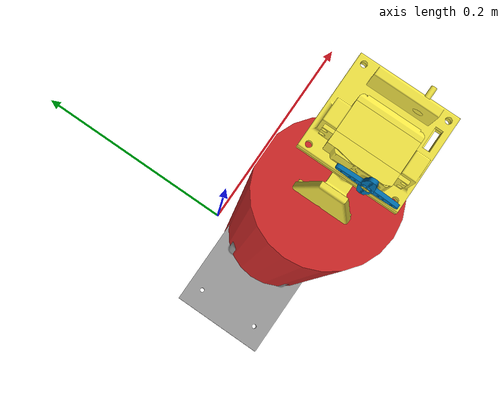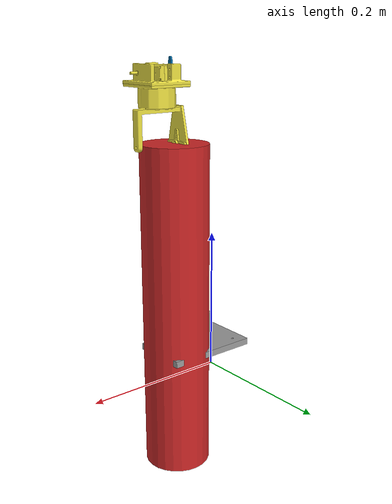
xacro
<?xml version="1.0"?>
<robot xmlns:xacro="http://ros.org/wiki/xacro" name="fredo1">

  <!-- Load materials -->
  <xacro:include filename="$(find fredo1_robot)/urdf/materials.xacro"/>

  <!-- Load links -->
  <xacro:include filename="$(find fredo1_robot)/urdf/links/base_link.xacro"/>
  <xacro:include filename="$(find fredo1_robot)/urdf/links/link1.xacro"/>
  <xacro:include filename="$(find fredo1_robot)/urdf/links/link2.xacro"/>
  <xacro:include filename="$(find fredo1_robot)/urdf/links/link3.xacro"/>

  <!-- Load joints -->
  <xacro:include filename="$(find fredo1_robot)/urdf/joints/joint0.xacro"/>
  <xacro:include filename="$(find fredo1_robot)/urdf/joints/joint1.xacro"/>
  <xacro:include filename="$(find fredo1_robot)/urdf/joints/joint2.xacro"/>
  <xacro:include filename="$(find fredo1_robot)/urdf/joints/joint3.xacro"/>

  <gazebo>
    <plugin name="gazebo_ros_control" filename="libgazebo_ros_control.so">
    </plugin>
  </gazebo>

</robot>

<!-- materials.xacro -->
<robot xmlns:xacro="http://ros.org/wiki/xacro">
  <material name="Blue">
    <color rgba="0 0 1 1"/>
  </material>
  <material name="Red">
    <color rgba="1 0 0 1"/>
  </material>
  <material name="Green">
    <color rgba="0 1 0 1"/>
  </material>
</robot>

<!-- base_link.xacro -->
<robot xmlns:xacro="http://ros.org/wiki/xacro">

  <!-- Define the fredo1 World Link -->
  <link name="world"/>

  <!-- Base Link -->
  <link name="base_link">
    <!-- Visual -->
    <visual>
      <origin xyz="0 0 0" rpy="1.5708 0 0"/>
      <geometry>
        <mesh filename="package://fredo1_robot/../cad/all_files/a_base.STL" scale="0.001 0.001 0.001"/>
      </geometry>
    </visual>

    <!-- Collision -->
    <collision>
      <origin xyz="0 0 0" rpy="1.5708 0 0"/>
      <geometry>
        <mesh filename="package://fredo1_robot/../cad/all_files/a_base.STL" scale="0.001 0.001 0.001"/>
      </geometry>
    </collision>

    <visual>
      <origin xyz="0 0 0" rpy="1.5708 0 0"/>
      <geometry>
        <mesh filename="package://fredo1_robot/../cad/all_files/a_servo_1.STL" scale="0.001 0.001 0.001"/>
      </geometry>
    </visual>

    <!-- Collision -->
    <collision>
      <origin xyz="0 0 0" rpy="1.5708 0 0"/>
      <geometry>
        <mesh filename="package://fredo1_robot/../cad/all_files/a_servo_1.STL" scale="0.001 0.001 0.001"/>
      </geometry>
    </collision>

    <visual>
      <origin xyz="0 0 0" rpy="1.5708 0 0"/>
      <geometry>
        <mesh filename="package://fredo1_robot/../cad/all_files/a_servo_2.STL" scale="0.001 0.001 0.001"/>
      </geometry>
    </visual>

    <!-- Collision -->
    <collision>
      <origin xyz="0 0 0" rpy="1.5708 0 0"/>
      <geometry>
        <mesh filename="package://fredo1_robot/../cad/all_files/a_servo_2.STL" scale="0.001 0.001 0.001"/>
      </geometry>
    </collision>

    <visual>
      <origin xyz="0 0 0" rpy="1.5708 0 0"/>
      <geometry>
        <mesh filename="package://fredo1_robot/../cad/all_files/a_servo_3.STL" scale="0.001 0.001 0.001"/>
      </geometry>
    </visual>

    <!-- Collision -->
    <collision>
      <origin xyz="0 0 0" rpy="1.5708 0 0"/>
      <geometry>
        <mesh filename="package://fredo1_robot/../cad/all_files/a_servo_3.STL" scale="0.001 0.001 0.001"/>
      </geometry>
    </collision>

    <visual>
      <origin xyz="0 0 0" rpy="1.5708 0 0"/>
      <geometry>
        <mesh filename="package://fredo1_robot/../cad/all_files/a_servo_4.STL" scale="0.001 0.001 0.001"/>
      </geometry>
    </visual>

    <!-- Collision -->
    <collision>
      <origin xyz="0 0 0" rpy="1.5708 0 0"/>
      <geometry>
        <mesh filename="package://fredo1_robot/../cad/all_files/a_servo_4.STL" scale="0.001 0.001 0.001"/>
      </geometry>
    </collision>

    <!-- Inertial -->
    <inertial>
      <mass value="9.0"/>
      <origin xyz="0 0 0" rpy="0 0 0"/>
      <inertia ixx="0.075" ixy="0.0" ixz="0.0"
              iyy="0.135" iyz="0.0"
              izz="0.075"/>
    </inertial>
  </link>

  <physics type="ode">
    <max_step_size>0.01</max_step_size>
    <real_time_update_rate>200</real_time_update_rate>
    <gravity>0 0 -9.81</gravity>
  </physics>

  <!-- GAZEBO-specific Color -->
  <gazebo reference="base_link">
    <material>Gazebo/Gray</material>
    <static>false</static>
  </gazebo>

</robot>

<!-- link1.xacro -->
<robot xmlns:xacro="http://ros.org/wiki/xacro">
  <link name="link1">

    <visual>
      <geometry>
        <cylinder length="0.5" radius="0.05"/>
      </geometry>
    </visual>

    <collision>
      <geometry>
        <cylinder length="0.5" radius="0.05"/>
      </geometry>
    </collision>

    <inertial>
      <mass value="1.0"/>
      <inertia ixx="0.01" ixy="0.0" ixz="0.0"
               iyy="0.01" iyz="0.0"
               izz="0.01"/>
    </inertial>
  </link>

  <gazebo reference="link1">
    <material>Gazebo/Blue</material>
  </gazebo>
</robot>

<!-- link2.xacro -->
<robot xmlns:xacro="http://ros.org/wiki/xacro">

  <!-- Define link2 -->
  <link name="link2">

    <!-- Visual -->
    <visual>
      <origin xyz="0.01074 0.07031 -0.09422" rpy="1.5708 0 0"/>
      <geometry>
        <mesh filename="package://fredo1_robot/../cad/all_files/c_servoarm.STL" scale="0.001 0.001 0.001"/>
      </geometry>
    </visual>

    <!-- Collision -->
    <collision>
      <origin xyz="0.01074 0.07031 -0.09422" rpy="1.5708 0 0"/>
      <geometry>
        <mesh filename="package://fredo1_robot/../cad/all_files/c_servoarm.STL" scale="0.001 0.001 0.001"/>
      </geometry>
    </collision>

    <!-- Visual -->
    <visual>
      <origin xyz="0.01074 0.07031 -0.09422" rpy="1.5708 0 0"/>
      <geometry>
        <mesh filename="package://fredo1_robot/../cad/all_files/c_secondarm.STL" scale="0.001 0.001 0.001"/>
      </geometry>
    </visual>

    <!-- Collision -->
    <collision>
      <origin xyz="0.01074 0.07031 -0.09422" rpy="1.5708 0 0"/>
      <geometry>
        <mesh filename="package://fredo1_robot/../cad/all_files/c_secondarm.STL" scale="0.001 0.001 0.001"/>
      </geometry>
    </collision>

    <!-- Visual -->
    <visual>
      <origin xyz="0.01074 0.07031 -0.09422" rpy="1.5708 0 0"/>
      <geometry>
        <mesh filename="package://fredo1_robot/../cad/all_files/c_servo_1.STL" scale="0.001 0.001 0.001"/>
      </geometry>
    </visual>

    <!-- Collision -->
    <collision>
      <origin xyz="0.01074 0.07031 -0.09422" rpy="1.5708 0 0"/>
      <geometry>
        <mesh filename="package://fredo1_robot/../cad/all_files/c_servo_1.STL" scale="0.001 0.001 0.001"/>
      </geometry>
    </collision>

    <!-- Visual -->
    <visual>
      <origin xyz="0.01074 0.07031 -0.09422" rpy="1.5708 0 0"/>
      <geometry>
        <mesh filename="package://fredo1_robot/../cad/all_files/c_servo_2.STL" scale="0.001 0.001 0.001"/>
      </geometry>
    </visual>

    <!-- Collision -->
    <collision>
      <origin xyz="0.01074 0.07031 -0.09422" rpy="1.5708 0 0"/>
      <geometry>
        <mesh filename="package://fredo1_robot/../cad/all_files/c_servo_2.STL" scale="0.001 0.001 0.001"/>
      </geometry>
    </collision>

    <!-- Visual -->
    <visual>
      <origin xyz="0.01074 0.07031 -0.09422" rpy="1.5708 0 0"/>
      <geometry>
        <mesh filename="package://fredo1_robot/../cad/all_files/c_servo_3.STL" scale="0.001 0.001 0.001"/>
      </geometry>
    </visual>

    <!-- Collision -->
    <collision>
      <origin xyz="0.01074 0.07031 -0.09422" rpy="1.5708 0 0"/>
      <geometry>
        <mesh filename="package://fredo1_robot/../cad/all_files/c_servo_3.STL" scale="0.001 0.001 0.001"/>
      </geometry>
    </collision>

    <!-- Visual -->
    <visual>
      <origin xyz="0.01074 0.07031 -0.09422" rpy="1.5708 0 0"/>
      <geometry>
        <mesh filename="package://fredo1_robot/../cad/all_files/c_servoplate.STL" scale="0.001 0.001 0.001"/>
      </geometry>
    </visual>

    <!-- Collision -->
    <collision>
      <origin xyz="0.01074 0.07031 -0.09422" rpy="1.5708 0 0"/>
      <geometry>
        <mesh filename="package://fredo1_robot/../cad/all_files/c_servoplate.STL" scale="0.001 0.001 0.001"/>
      </geometry>
    </collision>

    <!-- Visual -->
    <visual>
      <origin xyz="0.01074 0.07031 -0.09422" rpy="1.5708 0 0"/>
      <geometry>
        <mesh filename="package://fredo1_robot/../cad/all_files/c_rod.STL" scale="0.001 0.001 0.001"/>
      </geometry>
    </visual>

    <!-- Collision -->
    <collision>
      <origin xyz="0.01074 0.07031 -0.09422" rpy="1.5708 0 0"/>
      <geometry>
        <mesh filename="package://fredo1_robot/../cad/all_files/c_rod.STL" scale="0.001 0.001 0.001"/>
      </geometry>
    </collision>

    <!-- Visual -->
    <visual>
      <origin xyz="0.01074 0.07031 -0.09422" rpy="1.5708 0 0"/>
      <geometry>
        <mesh filename="package://fredo1_robot/../cad/all_files/c_servo_4.STL" scale="0.001 0.001 0.001"/>
      </geometry>
    </visual>

    <!-- Collision -->
    <collision>
      <origin xyz="0.01074 0.07031 -0.09422" rpy="1.5708 0 0"/>
      <geometry>
        <mesh filename="package://fredo1_robot/../cad/all_files/c_servo_4.STL" scale="0.001 0.001 0.001"/>
      </geometry>
    </collision>

    <!-- Inertial -->
    <inertial>
      <mass value="0.01"/>
      <inertia ixx="0.005" ixy="0.0" ixz="0.0"
               iyy="0.005" iyz="0.0"
               izz="0.005"/>
    </inertial>
  </link>

</robot>

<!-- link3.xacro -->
<robot xmlns:xacro="http://ros.org/wiki/xacro">

  <!-- Define link3 -->
  <link name="link3">

    <!-- Visual -->
    <visual>
      <origin xyz="0.01214 0.08073 -0.19022" rpy="1.5708 0 0"/>
      <geometry>
        <mesh filename="package://fredo1_robot/../cad/all_files/d_servoarm.STL" scale="0.001 0.001 0.001"/>
      </geometry>
    </visual>

    <!-- Collision -->
    <collision>
      <origin xyz="0.01214 0.08073 -0.19022" rpy="1.5708 0 0"/>
      <geometry>
        <mesh filename="package://fredo1_robot/../cad/all_files/d_servoarm.STL" scale="0.001 0.001 0.001"/>
      </geometry>
    </collision>

    <!-- Inertial -->
    <inertial>
      <mass value="0.00100001"/>
      <inertia ixx="0.00" ixy="0.0" ixz="0.0"
               iyy="0.00" iyz="0.0"
               izz="0.00"/>
    </inertial>
  </link>

  <gazebo reference="link1">
    <material>Gazebo/Red</material>
  </gazebo>

</robot>

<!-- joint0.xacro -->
<robot xmlns:xacro="http://ros.org/wiki/xacro">
  <joint name="joint0" type="fixed">
    <parent link="world"/>
    <child link="base_link"/>
    <origin xyz="0 0 0.01" rpy="0 0 0"/>
  </joint>
</robot>

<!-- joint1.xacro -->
<robot xmlns:xacro="http://ros.org/wiki/xacro">
  <joint name="joint1" type="revolute">
    <parent link="base_link"/>
    <child link="link1"/>
    <origin xyz="0.01916 -0.05981 0.06072" rpy="0 0 0"/>
    <axis xyz="0 0 1"/>
    <limit effort="10" velocity="1.0" lower="-1.57" upper="1.57"/>
  </joint>

  <transmission name="joint1_trans">
    <type>transmission_interface/SimpleTransmission</type>
    <joint name="joint1">
      <hardwareInterface>EffortJointInterface</hardwareInterface>
    </joint>
    <actuator name="joint1_motor">
      <mechanicalReduction>1</mechanicalReduction>
    </actuator>
  </transmission>
</robot>

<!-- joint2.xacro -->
<robot xmlns:xacro="http://ros.org/wiki/xacro">

  <!-- Define the revolute joint -->
  <joint name="joint2" type="revolute">
    <parent link="link1"/>  <!-- Parent link is link1 -->
    <child link="link2"/>   <!-- Child link is link2 -->

    <!-- Joint Origin -->
    <origin xyz="0 0 0.25" rpy="0 0 0"/> <!-- Position along Y axis of link1 -->

    <!-- Axis of Rotation: Y-axis -->
    <axis xyz="0 1 0"/>  <!-- Revolving around Y-axis -->

    <!-- Joint Limits -->
    <limit lower="-1.57" upper="1.57" effort="5" velocity="1"/>
  </joint>

  <transmission name="joint2_trans">
    <type>transmission_interface/SimpleTransmission</type>
    <joint name="joint2">
      <hardwareInterface>EffortJointInterface</hardwareInterface>
    </joint>
    <actuator name="joint2_motor">
      <mechanicalReduction>1</mechanicalReduction>
    </actuator>
  </transmission>

</robot>

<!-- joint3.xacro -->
<robot xmlns:xacro="http://ros.org/wiki/xacro">

  <!-- Define the revolute joint -->
  <joint name="joint3" type="revolute">
    <parent link="link2"/>  <!-- Parent link is link1 -->
    <child link="link3"/>   <!-- Child link is link2 -->

    <!-- Joint Origin -->
    <origin xyz="0.0014 -0.01042 0.096" rpy="0 0 0"/> <!-- Position along Y axis of link1 -->

    <!-- Axis of Rotation: Y-axis -->
    <axis xyz="1 0 0"/>  <!-- Revolving around Y-axis -->

    <!-- Joint Limits -->
    <limit lower="-1.57" upper="1.57" effort="5" velocity="1"/>
  </joint>

  <transmission name="joint3_trans">
    <type>transmission_interface/SimpleTransmission</type>
    <joint name="joint3">
      <hardwareInterface>EffortJointInterface</hardwareInterface>
    </joint>
    <actuator name="joint3_motor">
      <mechanicalReduction>1</mechanicalReduction>
    </actuator>
  </transmission>

</robot>
